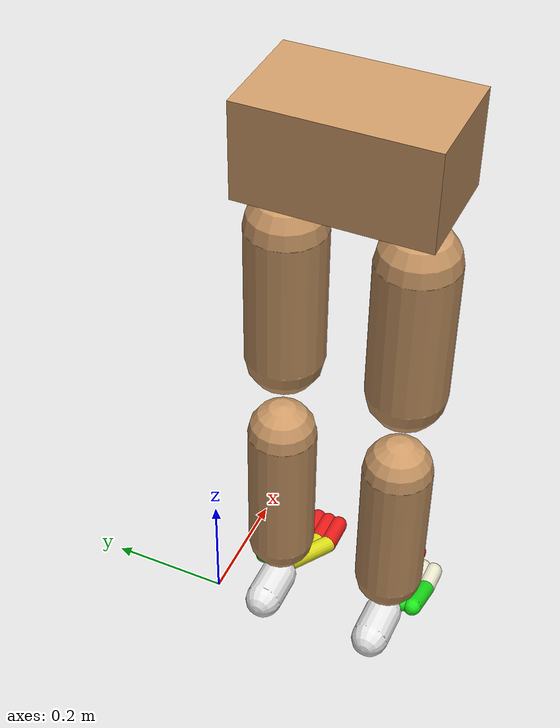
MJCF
<mujoco model="lower_body_multisegment">
  <compiler coordinate="local"/>
  <default>
    <joint damping="0.0" armature="0.01" stiffness="0.0" limited="true"/>
    <geom conaffinity="1" condim="3" contype="7" margin="0.001" rgba="0.8 0.6 .4 1"/>
  </default>
  <asset>
    <texture type="skybox" builtin="gradient" rgb1=".4 .5 .6" rgb2="0 0 0" width="100" height="100"/>
    <texture builtin="flat" height="1278" mark="cross" markrgb="1 1 1" name="texgeom" random="0.01" rgb1="0.8 0.6 0.4" rgb2="0.8 0.6 0.4" type="cube" width="127"/>
    <texture builtin="checker" height="100" name="texplane" rgb1="0 0 0" rgb2="0.8 0.8 0.8" type="2d" width="100"/>
    <material name="MatPlane" reflectance="0.5" shininess="1" specular="1" texrepeat="60 60" texture="texplane"/>
    <material name="geom" texture="texgeom" texuniform="true"/>
  </asset>
  <worldbody>
    <light cutoff="100" diffuse="1 1 1" dir="-0 0 -1.3" directional="true" exponent="1" pos="0 0 1.3" specular=".1 .1 .1"/>

    <body name="Pelvis" pos="-0.0018 -0.2233 1.0">
      <freejoint name="Pelvis"/>
      <geom type="box" pos="-0.0055 -0.0000 -0.0121" size="0.083 0.1400 0.0722" quat="1.0000 0.0000 0.0000 0.0000" density="1000"/>

      <body name="L_Hip" pos="-0.0066 0.0950 -0.0910">
        <joint name="L_Hip_x" type="hinge" pos="0 0 0" axis="1 0 0" stiffness="800" damping="80" armature="0.02" range="-180.0000 180.0000"/>
        <joint name="L_Hip_y" type="hinge" pos="0 0 0" axis="0 1 0" stiffness="800" damping="80" armature="0.02" range="-180.0000 180.0000"/>
        <joint name="L_Hip_z" type="hinge" pos="0 0 0" axis="0 0 1" stiffness="800" damping="80" armature="0.02" range="-180.0000 180.0000"/>
        <geom type="capsule" contype="1" conaffinity="1" density="2040.816327" fromto="0.0000 0.0000 -0.0750 0.0000 0.0000 -0.3039" size="0.0606"/>
        <body name="L_Knee" pos="-0.0067 0.0000 -0.3789">
          <joint name="L_Knee_x" type="hinge" pos="0 0 0" axis="1 0 0" stiffness="800" damping="80" armature="0.02" range="-180.0000 180.0000"/>
          <joint name="L_Knee_y" type="hinge" pos="0 0 0" axis="0 1 0" stiffness="800" damping="80" armature="0.02" range="-180.0000 180.0000"/>
          <joint name="L_Knee_z" type="hinge" pos="0 0 0" axis="0 0 1" stiffness="800" damping="80" armature="0.02" range="-180.0000 180.0000"/>
          <geom type="capsule" contype="1" conaffinity="1" density="1234.567901" fromto="0.0000 0.0000 -0.0797 0.0000 0.0000 -0.3185" size="0.0541"/>

          <body name="L_Ankle" pos="0.0000 0.0000 -0.3982">
            <joint name="L_Ankle_x" type="hinge" pos="0 0 0" axis="1 0 0" stiffness="800" damping="80" armature="0.02" range="-180.0000 180.0000"/>
            <joint name="L_Ankle_y" type="hinge" pos="0 0 0" axis="0 1 0" stiffness="800" damping="80" armature="0.02" range="-180.0000 180.0000"/>
            <joint name="L_Ankle_z" type="hinge" pos="0 0 0" axis="0 0 1" stiffness="800" damping="80" armature="0.02" range="-180.0000 180.0000"/>

            <geom name="L_MedMeta_geom1" type="capsule" fromto="0 0 0  0.11 -0.04 -0.04" size="0.015" rgba="0.9 0.9 0.1 1" density="1000"/>
            <geom name="L_MedMeta_geom2" type="capsule" fromto="0 0 0  0.11 -0.02 -0.04" size="0.015" rgba="0.9 0.9 0.1 1" density="1000"/>
            <geom name="L_MedMeta_geom3" type="capsule" fromto="0 0 0  0.11 0.00 -0.04" size="0.015" rgba="0.9 0.9 0.1 1" density="1000"/>

            <body name="L_Heel" pos="-0.01 0 -0.01">
              <joint name="L_Heel_x" type="hinge" pos="0 0 0" axis="1 0 0" stiffness="500" damping="50" armature="0.01" range="-45 45"/>
              <joint name="L_Heel_y" type="hinge" pos="0 0 0" axis="0 1 0" stiffness="500" damping="50" armature="0.01" range="-45 45"/>
              <joint name="L_Heel_z" type="hinge" pos="0 0 0" axis="0 0 1" stiffness="500" damping="50" armature="0.01" range="-45 45"/>
              <geom name="L_Heel_geom" type="capsule" fromto="0 0 0  -0.06 0 0" size="0.03" rgba="0.9 0.9 0.9 1" density="1000"/>
            </body>

            <body name="L_MedToes" pos="0.11 -0.02 -0.04">
              <joint name="L_MedToes_x" type="hinge" pos="0 0 0" axis="1 0 0" stiffness="500" damping="50" armature="0.01" range="-90 90"/>
              <joint name="L_MedToes_y" type="hinge" pos="0 0 0" axis="0 1 0" stiffness="500" damping="50" armature="0.01" range="-45 45"/>
              <joint name="L_MedToes_z" type="hinge" pos="0 0 0" axis="0 0 1" stiffness="500" damping="50" armature="0.01" range="-45 45"/>
              <geom name="L_MedToes_geom1" type="capsule" fromto="0 -0.02 0  0.05 -0.02 0" size="0.015" rgba="0.9 0.1 0.1 1" density="1000"/>
              <geom name="L_MedToes_geom2" type="capsule" fromto="0 0.00 0  0.05 0.00 0" size="0.015" rgba="0.9 0.1 0.1 1" density="1000"/>
              <geom name="L_MedToes_geom3" type="capsule" fromto="0 0.02 0  0.05 0.02 0" size="0.015" rgba="0.9 0.1 0.1 1" density="1000"/>
            </body>

            <body name="L_LatMeta" pos="0.02 0.03 -0.01">
              <joint name="L_LatMeta_x" type="hinge" pos="0 0 0" axis="1 0 0" stiffness="500" damping="50" armature="0.01" range="-45 45"/>
              <joint name="L_LatMeta_y" type="hinge" pos="0 0 0" axis="0 1 0" stiffness="500" damping="50" armature="0.01" range="-45 45"/>
              <joint name="L_LatMeta_z" type="hinge" pos="0 0 0" axis="0 0 1" stiffness="500" damping="50" armature="0.01" range="-45 45"/>
              <geom name="L_LatMeta_geom1" type="capsule" fromto="0 -0.01 0  0.07 -0.01 -0.03" size="0.015" rgba="0.1 0.9 0.1 1" density="1000"/>
              <geom name="L_LatMeta_geom2" type="capsule" fromto="0 0.01 0  0.07 0.01 -0.03" size="0.015" rgba="0.1 0.9 0.1 1" density="1000"/>

              <body name="L_LatToes" pos="0.07 0 -0.03">
                <joint name="L_LatToes_x" type="hinge" pos="0 0 0" axis="1 0 0" stiffness="500" damping="50" armature="0.01" range="-90 90"/>
                <joint name="L_LatToes_y" type="hinge" pos="0 0 0" axis="0 1 0" stiffness="500" damping="50" armature="0.01" range="-45 45"/>
                <joint name="L_LatToes_z" type="hinge" pos="0 0 0" axis="0 0 1" stiffness="500" damping="50" armature="0.01" range="-45 45"/>
                <geom name="L_LatToes_geom1" type="capsule" fromto="0 -0.01 0  0.04 -0.01 0" size="0.015" rgba="0.9 0.9 0.8 1" density="1000"/>
                <geom name="L_LatToes_geom2" type="capsule" fromto="0 0.01 0  0.04 0.01 0" size="0.015" rgba="0.9 0.9 0.8 1" density="1000"/>
              </body>
            </body>
          </body>
        </body>
      </body>

      <body name="R_Hip" pos="-0.0066 -0.0950 -0.0910">
        <joint name="R_Hip_x" type="hinge" pos="0 0 0" axis="1 0 0" stiffness="800" damping="80" armature="0.02" range="-180.0000 180.0000"/>
        <joint name="R_Hip_y" type="hinge" pos="0 0 0" axis="0 1 0" stiffness="800" damping="80" armature="0.02" range="-180.0000 180.0000"/>
        <joint name="R_Hip_z" type="hinge" pos="0 0 0" axis="0 0 1" stiffness="800" damping="80" armature="0.02" range="-180.0000 180.0000"/>
        <geom type="capsule" contype="1" conaffinity="1" density="2040.816327" fromto="0.0000 0.0000 -0.0750 0.0000 0.0000 -0.3039" size="0.0606"/>
        <body name="R_Knee" pos="-0.0067 0.0000 -0.3789">
          <joint name="R_Knee_x" type="hinge" pos="0 0 0" axis="1 0 0" stiffness="800" damping="80" armature="0.02" range="-180.0000 180.0000"/>
          <joint name="R_Knee_y" type="hinge" pos="0 0 0" axis="0 1 0" stiffness="800" damping="80" armature="0.02" range="-180.0000 180.0000"/>
          <joint name="R_Knee_z" type="hinge" pos="0 0 0" axis="0 0 1" stiffness="800" damping="80" armature="0.02" range="-180.0000 180.0000"/>
          <geom type="capsule" contype="1" conaffinity="1" density="1234.567901" fromto="0.0000 0.0000 -0.0797 0.0000 0.0000 -0.3185" size="0.0541"/>

          <body name="R_Ankle" pos="0.0000 0.0000 -0.3982">
            <joint name="R_Ankle_x" type="hinge" pos="0 0 0" axis="1 0 0" stiffness="800" damping="80" armature="0.02" range="-180.0000 180.0000"/>
            <joint name="R_Ankle_y" type="hinge" pos="0 0 0" axis="0 1 0" stiffness="800" damping="80" armature="0.02" range="-180.0000 180.0000"/>
            <joint name="R_Ankle_z" type="hinge" pos="0 0 0" axis="0 0 1" stiffness="800" damping="80" armature="0.02" range="-180.0000 180.0000"/>

            <geom name="R_MedMeta_geom1" type="capsule" fromto="0 0 0  0.11 0.04 -0.04" size="0.015" rgba="0.9 0.9 0.1 1" density="1000"/>
            <geom name="R_MedMeta_geom2" type="capsule" fromto="0 0 0  0.11 0.02 -0.04" size="0.015" rgba="0.9 0.9 0.1 1" density="1000"/>
            <geom name="R_MedMeta_geom3" type="capsule" fromto="0 0 0  0.11 0.00 -0.04" size="0.015" rgba="0.9 0.9 0.1 1" density="1000"/>

            <body name="R_Heel" pos="-0.01 0 -0.01">
              <joint name="R_Heel_x" type="hinge" pos="0 0 0" axis="1 0 0" stiffness="500" damping="50" armature="0.01" range="-45 45"/>
              <joint name="R_Heel_y" type="hinge" pos="0 0 0" axis="0 1 0" stiffness="500" damping="50" armature="0.01" range="-45 45"/>
              <joint name="R_Heel_z" type="hinge" pos="0 0 0" axis="0 0 1" stiffness="500" damping="50" armature="0.01" range="-45 45"/>
              <geom name="R_Heel_geom" type="capsule" fromto="0 0 0  -0.06 0 0" size="0.03" rgba="0.9 0.9 0.9 1" density="1000"/>
            </body>

            <body name="R_MedToes" pos="0.11 0.02 -0.04">
              <joint name="R_MedToes_x" type="hinge" pos="0 0 0" axis="1 0 0" stiffness="500" damping="50" armature="0.01" range="-90 90"/>
              <joint name="R_MedToes_y" type="hinge" pos="0 0 0" axis="0 1 0" stiffness="500" damping="50" armature="0.01" range="-45 45"/>
              <joint name="R_MedToes_z" type="hinge" pos="0 0 0" axis="0 0 1" stiffness="500" damping="50" armature="0.01" range="-45 45"/>
              <geom name="R_MedToes_geom1" type="capsule" fromto="0 0.02 0  0.05 0.02 0" size="0.015" rgba="0.9 0.1 0.1 1" density="1000"/>
              <geom name="R_MedToes_geom2" type="capsule" fromto="0 0.00 0  0.05 0.00 0" size="0.015" rgba="0.9 0.1 0.1 1" density="1000"/>
              <geom name="R_MedToes_geom3" type="capsule" fromto="0 -0.02 0  0.05 -0.02 0" size="0.015" rgba="0.9 0.1 0.1 1" density="1000"/>
            </body>

            <body name="R_LatMeta" pos="0.02 -0.03 -0.01">
              <joint name="R_LatMeta_x" type="hinge" pos="0 0 0" axis="1 0 0" stiffness="500" damping="50" armature="0.01" range="-45 45"/>
              <joint name="R_LatMeta_y" type="hinge" pos="0 0 0" axis="0 1 0" stiffness="500" damping="50" armature="0.01" range="-45 45"/>
              <joint name="R_LatMeta_z" type="hinge" pos="0 0 0" axis="0 0 1" stiffness="500" damping="50" armature="0.01" range="-45 45"/>
              <geom name="R_LatMeta_geom1" type="capsule" fromto="0 0.01 0  0.07 0.01 -0.03" size="0.015" rgba="0.1 0.9 0.1 1" density="1000"/>
              <geom name="R_LatMeta_geom2" type="capsule" fromto="0 -0.01 0  0.07 -0.01 -0.03" size="0.015" rgba="0.1 0.9 0.1 1" density="1000"/>

              <body name="R_LatToes" pos="0.07 0 -0.03">
                <joint name="R_LatToes_x" type="hinge" pos="0 0 0" axis="1 0 0" stiffness="500" damping="50" armature="0.01" range="-90 90"/>
                <joint name="R_LatToes_y" type="hinge" pos="0 0 0" axis="0 1 0" stiffness="500" damping="50" armature="0.01" range="-45 45"/>
                <joint name="R_LatToes_z" type="hinge" pos="0 0 0" axis="0 0 1" stiffness="500" damping="50" armature="0.01" range="-45 45"/>
                <geom name="R_LatToes_geom1" type="capsule" fromto="0 0.01 0  0.04 0.01 0" size="0.015" rgba="0.9 0.9 0.8 1" density="1000"/>
                <geom name="R_LatToes_geom2" type="capsule" fromto="0 -0.01 0  0.04 -0.01 0" size="0.015" rgba="0.9 0.9 0.8 1" density="1000"/>
              </body>
            </body>
          </body>
        </body>
      </body>
    </body>
  </worldbody>
  <actuator>
    <motor name="L_Hip_x" joint="L_Hip_x" gear="500"/>
    <motor name="L_Hip_y" joint="L_Hip_y" gear="500"/>
    <motor name="L_Hip_z" joint="L_Hip_z" gear="500"/>
    <motor name="L_Knee_x" joint="L_Knee_x" gear="500"/>
    <motor name="L_Knee_y" joint="L_Knee_y" gear="500"/>
    <motor name="L_Knee_z" joint="L_Knee_z" gear="500"/>
    <motor name="L_Ankle_x" joint="L_Ankle_x" gear="500"/>
    <motor name="L_Ankle_y" joint="L_Ankle_y" gear="500"/>
    <motor name="L_Ankle_z" joint="L_Ankle_z" gear="500"/>

    <motor name="L_Heel_x" joint="L_Heel_x" gear="200"/>
    <motor name="L_Heel_y" joint="L_Heel_y" gear="200"/>
    <motor name="L_Heel_z" joint="L_Heel_z" gear="200"/>
    <motor name="L_MedToes_x" joint="L_MedToes_x" gear="100"/>
    <motor name="L_MedToes_y" joint="L_MedToes_y" gear="100"/>
    <motor name="L_MedToes_z" joint="L_MedToes_z" gear="100"/>
    <motor name="L_LatMeta_x" joint="L_LatMeta_x" gear="100"/>
    <motor name="L_LatMeta_y" joint="L_LatMeta_y" gear="100"/>
    <motor name="L_LatMeta_z" joint="L_LatMeta_z" gear="100"/>
    <motor name="L_LatToes_x" joint="L_LatToes_x" gear="50"/>
    <motor name="L_LatToes_y" joint="L_LatToes_y" gear="50"/>
    <motor name="L_LatToes_z" joint="L_LatToes_z" gear="50"/>

    <motor name="R_Hip_x" joint="R_Hip_x" gear="500"/>
    <motor name="R_Hip_y" joint="R_Hip_y" gear="500"/>
    <motor name="R_Hip_z" joint="R_Hip_z" gear="500"/>
    <motor name="R_Knee_x" joint="R_Knee_x" gear="500"/>
    <motor name="R_Knee_y" joint="R_Knee_y" gear="500"/>
    <motor name="R_Knee_z" joint="R_Knee_z" gear="500"/>
    <motor name="R_Ankle_x" joint="R_Ankle_x" gear="500"/>
    <motor name="R_Ankle_y" joint="R_Ankle_y" gear="500"/>
    <motor name="R_Ankle_z" joint="R_Ankle_z" gear="500"/>

    <motor name="R_Heel_x" joint="R_Heel_x" gear="200"/>
    <motor name="R_Heel_y" joint="R_Heel_y" gear="200"/>
    <motor name="R_Heel_z" joint="R_Heel_z" gear="200"/>
    <motor name="R_MedToes_x" joint="R_MedToes_x" gear="100"/>
    <motor name="R_MedToes_y" joint="R_MedToes_y" gear="100"/>
    <motor name="R_MedToes_z" joint="R_MedToes_z" gear="100"/>
    <motor name="R_LatMeta_x" joint="R_LatMeta_x" gear="100"/>
    <motor name="R_LatMeta_y" joint="R_LatMeta_y" gear="100"/>
    <motor name="R_LatMeta_z" joint="R_LatMeta_z" gear="100"/>
    <motor name="R_LatToes_x" joint="R_LatToes_x" gear="50"/>
    <motor name="R_LatToes_y" joint="R_LatToes_y" gear="50"/>
    <motor name="R_LatToes_z" joint="R_LatToes_z" gear="50"/>
  </actuator>
  <contact>
    <exclude body1="R_Knee" body2="L_Ankle"/>

    <exclude body1="L_Ankle" body2="L_Heel"/>
    <exclude body1="L_Ankle" body2="L_MedToes"/>
    <exclude body1="L_Ankle" body2="L_LatMeta"/>
    <exclude body1="L_LatMeta" body2="L_LatToes"/>

    <exclude body1="R_Ankle" body2="R_Heel"/>
    <exclude body1="R_Ankle" body2="R_MedToes"/>
    <exclude body1="R_Ankle" body2="R_LatMeta"/>
    <exclude body1="R_LatMeta" body2="R_LatToes"/>
  </contact>
  <sensor/>
  <size njmax="700" nconmax="700"/>
</mujoco>
